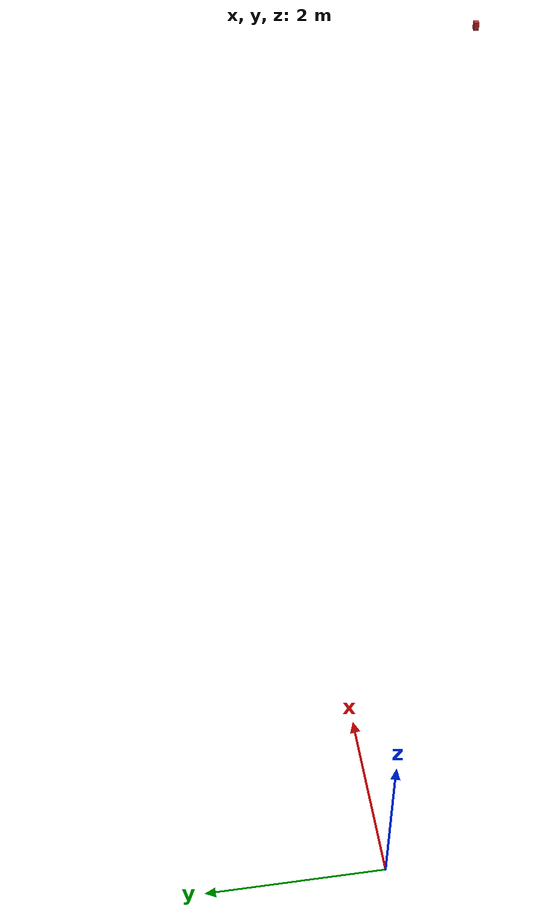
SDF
<?xml version='1.0'?>
<sdf version='1.7'>
  <model name='my_uav'>
    <static>1</static>
    <link name='base_link'>
      <inertial>
        <pose>0 0 0.005 0 -0 0</pose>
        <mass>50</mass>
        <inertia>
          <ixx>0.375417</ixx>
          <ixy>0</ixy>
          <ixz>0</ixz>
          <iyy>0.375417</iyy>
          <iyz>0</iyz>
          <izz>0.75</izz>
        </inertia>
      </inertial>
      <sensor name='camera_uav' type='camera'>
        <always_on>1</always_on>
        <visualize>0</visualize>
        <update_rate>10</update_rate>
        <camera>
          <horizontal_fov>1.25</horizontal_fov>
          <image>
            <format>R8G8B8</format>
            <width>1000</width>
            <height>1000</height>
          </image>
          <clip>
            <near>1</near>
            <far>15</far>
          </clip>
        </camera>
        <plugin name='uav_camera_controller' filename='libgazebo_ros_camera.so'>
          <ros>
            <namespace>/my_uav</namespace>
            <remapping>~/image_raw:=/camera_uav/image_raw</remapping>
          </ros>
          <frame_name>camera_link_optical_uav</frame_name>
        </plugin>
        <pose>0 0 10 3.14159 1.57079 3.14159</pose>
      </sensor>
      <self_collide>0</self_collide>
      <enable_wind>0</enable_wind>
      <kinematic>0</kinematic>
      <pose>0 0 0 0 -0 0</pose>
      <visual name='base_link_fixed_joint_lump__chassis_visual'>
        <pose>0 0 0.005 0 -0 0</pose>
        <geometry>
          <box>
            <size>0.01 0.01 0.01</size>
          </box>
        </geometry>
        <material>
          <script>
            <name>Gazebo/White</name>
            <uri>file://media/materials/scripts/gazebo.material</uri>
          </script>
          <shader type='pixel'/>
          <emissive>0 0 0 1</emissive>
        </material>
        <transparency>0</transparency>
        <cast_shadows>1</cast_shadows>
      </visual>
      <visual name='base_link_fixed_joint_lump__camera_link_uav_visual_1'>
        <pose>0 0 10 3.14159 1.57079 3.14159</pose>
        <geometry>
          <box>
            <size>0.05 0.03 0.03</size>
          </box>
        </geometry>
        <material>
          <script>
            <name>Gazebo/Red</name>
            <uri>file://media/materials/scripts/gazebo.material</uri>
          </script>
          <shader type='pixel'/>
          <emissive>0 0 0 1</emissive>
        </material>
        <transparency>0</transparency>
        <cast_shadows>1</cast_shadows>
      </visual>
      <collision name='base_link_fixed_joint_lump__chassis_collision'>
        <laser_retro>0</laser_retro>
        <max_contacts>10</max_contacts>
        <pose>0 0 0.005 0 -0 0</pose>
        <geometry>
          <box>
            <size>0.1 0.1 0.01</size>
          </box>
        </geometry>
        <surface>
          <friction>
            <ode>
              <mu>1</mu>
              <mu2>1</mu2>
              <fdir1>0 0 0</fdir1>
              <slip1>0</slip1>
              <slip2>0</slip2>
            </ode>
            <torsional>
              <coefficient>1</coefficient>
              <patch_radius>0</patch_radius>
              <surface_radius>0</surface_radius>
              <use_patch_radius>1</use_patch_radius>
              <ode>
                <slip>0</slip>
              </ode>
            </torsional>
          </friction>
          <bounce>
            <restitution_coefficient>0</restitution_coefficient>
            <threshold>1e+06</threshold>
          </bounce>
          <contact>
            <collide_without_contact>0</collide_without_contact>
            <collide_without_contact_bitmask>1</collide_without_contact_bitmask>
            <collide_bitmask>1</collide_bitmask>
            <ode>
              <soft_cfm>0</soft_cfm>
              <soft_erp>0.2</soft_erp>
              <kp>1e+13</kp>
              <kd>1</kd>
              <max_vel>0.01</max_vel>
              <min_depth>0</min_depth>
            </ode>
            <bullet>
              <split_impulse>1</split_impulse>
              <split_impulse_penetration_threshold>-0.01</split_impulse_penetration_threshold>
              <soft_cfm>0</soft_cfm>
              <soft_erp>0.2</soft_erp>
              <kp>1e+13</kp>
              <kd>1</kd>
            </bullet>
          </contact>
        </surface>
      </collision>
    </link>
    <allow_auto_disable>1</allow_auto_disable>
  </model>
</sdf>
